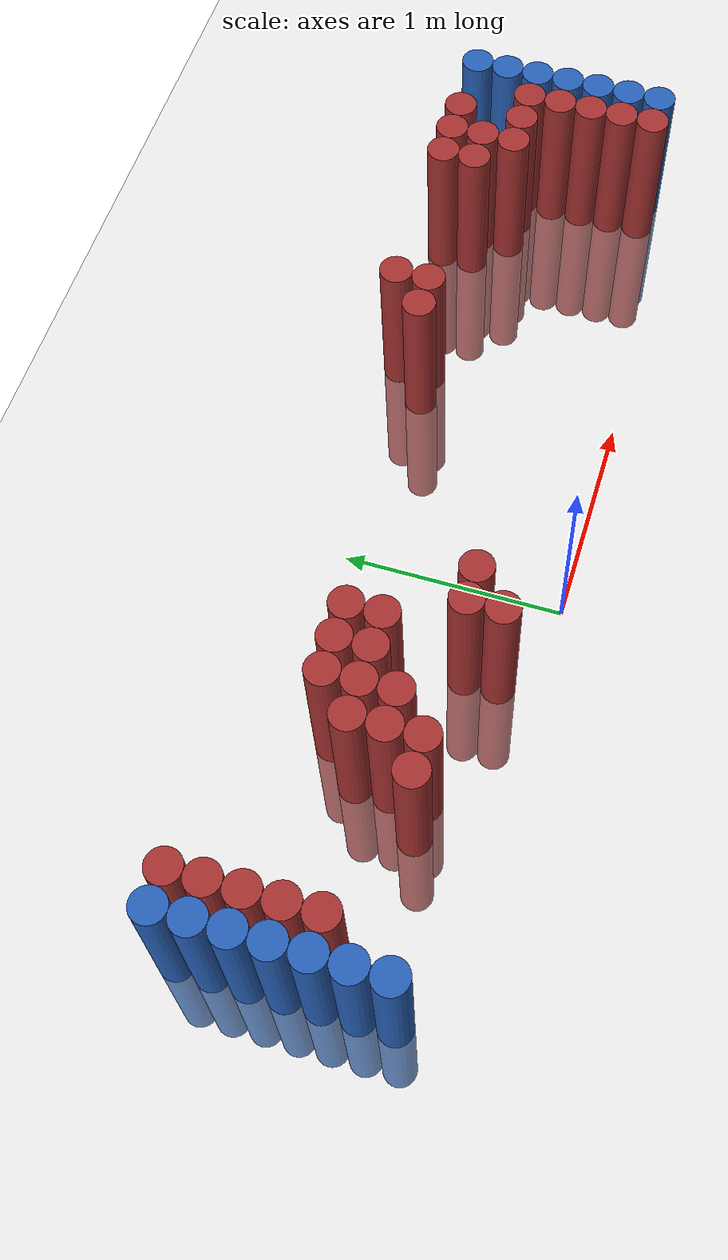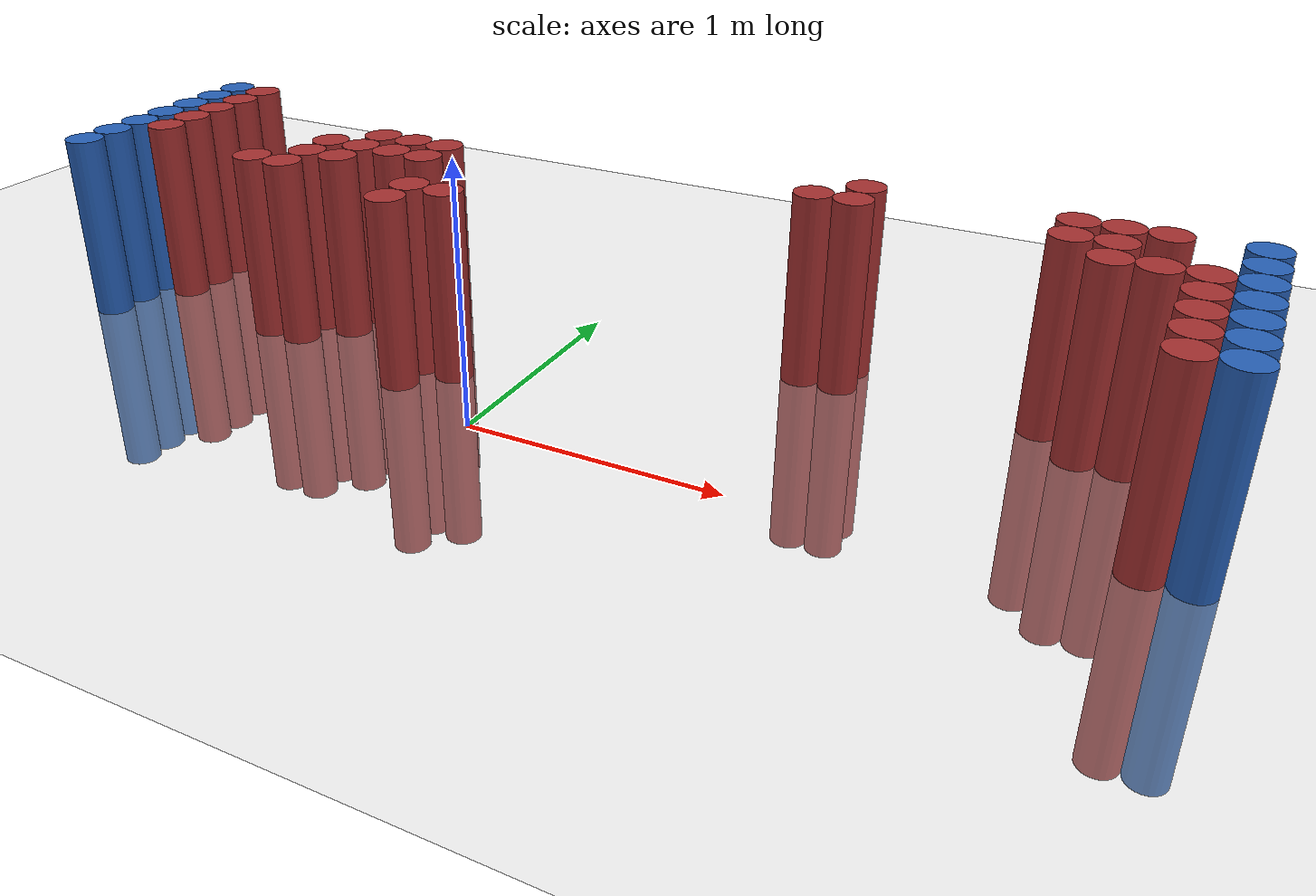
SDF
<sdf version="1.6">
 <world name="default">
  <model name="ground_plane">
   <static>1</static>
   <link name="link">
    <collision name="collision">
     <geometry><plane><normal>0 0 1</normal><size>100 100</size></plane></geometry>
     <surface><friction><ode><mu>100</mu><mu2>50</mu2></ode></friction></surface>
    </collision>
    <visual name="visual">
     <cast_shadows>0</cast_shadows>
     <geometry><plane><normal>0 0 1</normal><size>100 100</size></plane></geometry>
     <material>
      <script><uri>file://media/materials/scripts/gazebo.material</uri><name>Gazebo/Grey</name></script>
     </material>
    </visual>
   </link>
  </model>
  <model name="unit_cylinder_96">
   <static>1</static>
   <pose>-1.925000 0.175000 0.000000 0.000000 0.000000 0.000000</pose>
   <link name="link">
    <inertial>
     <mass>1</mass>
     <inertia><ixx>0.145833</ixx><ixy>0</ixy><ixz>0</ixz><iyy>0.145833</iyy><iyz>0</iyz><izz>0.125</izz></inertia>
    </inertial>
    <collision name="collision">
     <geometry><cylinder><radius>0.075000</radius><length>1.5</length></cylinder></geometry>
    </collision>
    <visual name="visual">
     <geometry><cylinder><radius>0.075000</radius><length>1.5</length></cylinder></geometry>
     <material>
      <ambient>0.152000 0.379000 0.720000 1</ambient>
      <diffuse>0.152000 0.379000 0.720000 1</diffuse>
     </material>
     <material>
      <script><name>Gazebo/Grey</name><uri>file://media/materials/scripts/gazebo.material</uri></script>
     </material>
    </visual>
   </link>
  </model>
  <model name="unit_cylinder_97">
   <static>1</static>
   <pose>-1.925000 0.325000 0.000000 0.000000 0.000000 0.000000</pose>
   <link name="link">
    <inertial>
     <mass>1</mass>
     <inertia><ixx>0.145833</ixx><ixy>0</ixy><ixz>0</ixz><iyy>0.145833</iyy><iyz>0</iyz><izz>0.125</izz></inertia>
    </inertial>
    <collision name="collision">
     <geometry><cylinder><radius>0.075000</radius><length>1.5</length></cylinder></geometry>
    </collision>
    <visual name="visual">
     <geometry><cylinder><radius>0.075000</radius><length>1.5</length></cylinder></geometry>
     <material>
      <ambient>0.152000 0.379000 0.720000 1</ambient>
      <diffuse>0.152000 0.379000 0.720000 1</diffuse>
     </material>
     <material>
      <script><name>Gazebo/Grey</name><uri>file://media/materials/scripts/gazebo.material</uri></script>
     </material>
    </visual>
   </link>
  </model>
  <model name="unit_cylinder_98">
   <static>1</static>
   <pose>-1.925000 0.475000 0.000000 0.000000 0.000000 0.000000</pose>
   <link name="link">
    <inertial>
     <mass>1</mass>
     <inertia><ixx>0.145833</ixx><ixy>0</ixy><ixz>0</ixz><iyy>0.145833</iyy><iyz>0</iyz><izz>0.125</izz></inertia>
    </inertial>
    <collision name="collision">
     <geometry><cylinder><radius>0.075000</radius><length>1.5</length></cylinder></geometry>
    </collision>
    <visual name="visual">
     <geometry><cylinder><radius>0.075000</radius><length>1.5</length></cylinder></geometry>
     <material>
      <ambient>0.152000 0.379000 0.720000 1</ambient>
      <diffuse>0.152000 0.379000 0.720000 1</diffuse>
     </material>
     <material>
      <script><name>Gazebo/Grey</name><uri>file://media/materials/scripts/gazebo.material</uri></script>
     </material>
    </visual>
   </link>
  </model>
  <model name="unit_cylinder_99">
   <static>1</static>
   <pose>-1.925000 0.625000 0.000000 0.000000 0.000000 0.000000</pose>
   <link name="link">
    <inertial>
     <mass>1</mass>
     <inertia><ixx>0.145833</ixx><ixy>0</ixy><ixz>0</ixz><iyy>0.145833</iyy><iyz>0</iyz><izz>0.125</izz></inertia>
    </inertial>
    <collision name="collision">
     <geometry><cylinder><radius>0.075000</radius><length>1.5</length></cylinder></geometry>
    </collision>
    <visual name="visual">
     <geometry><cylinder><radius>0.075000</radius><length>1.5</length></cylinder></geometry>
     <material>
      <ambient>0.152000 0.379000 0.720000 1</ambient>
      <diffuse>0.152000 0.379000 0.720000 1</diffuse>
     </material>
     <material>
      <script><name>Gazebo/Grey</name><uri>file://media/materials/scripts/gazebo.material</uri></script>
     </material>
    </visual>
   </link>
  </model>
  <model name="unit_cylinder_100">
   <static>1</static>
   <pose>-1.925000 0.775000 0.000000 0.000000 0.000000 0.000000</pose>
   <link name="link">
    <inertial>
     <mass>1</mass>
     <inertia><ixx>0.145833</ixx><ixy>0</ixy><ixz>0</ixz><iyy>0.145833</iyy><iyz>0</iyz><izz>0.125</izz></inertia>
    </inertial>
    <collision name="collision">
     <geometry><cylinder><radius>0.075000</radius><length>1.5</length></cylinder></geometry>
    </collision>
    <visual name="visual">
     <geometry><cylinder><radius>0.075000</radius><length>1.5</length></cylinder></geometry>
     <material>
      <ambient>0.152000 0.379000 0.720000 1</ambient>
      <diffuse>0.152000 0.379000 0.720000 1</diffuse>
     </material>
     <material>
      <script><name>Gazebo/Grey</name><uri>file://media/materials/scripts/gazebo.material</uri></script>
     </material>
    </visual>
   </link>
  </model>
  <model name="unit_cylinder_101">
   <static>1</static>
   <pose>-1.925000 0.925000 0.000000 0.000000 0.000000 0.000000</pose>
   <link name="link">
    <inertial>
     <mass>1</mass>
     <inertia><ixx>0.145833</ixx><ixy>0</ixy><ixz>0</ixz><iyy>0.145833</iyy><iyz>0</iyz><izz>0.125</izz></inertia>
    </inertial>
    <collision name="collision">
     <geometry><cylinder><radius>0.075000</radius><length>1.5</length></cylinder></geometry>
    </collision>
    <visual name="visual">
     <geometry><cylinder><radius>0.075000</radius><length>1.5</length></cylinder></geometry>
     <material>
      <ambient>0.152000 0.379000 0.720000 1</ambient>
      <diffuse>0.152000 0.379000 0.720000 1</diffuse>
     </material>
     <material>
      <script><name>Gazebo/Grey</name><uri>file://media/materials/scripts/gazebo.material</uri></script>
     </material>
    </visual>
   </link>
  </model>
  <model name="unit_cylinder_102">
   <static>1</static>
   <pose>-1.925000 1.075000 0.000000 0.000000 0.000000 0.000000</pose>
   <link name="link">
    <inertial>
     <mass>1</mass>
     <inertia><ixx>0.145833</ixx><ixy>0</ixy><ixz>0</ixz><iyy>0.145833</iyy><iyz>0</iyz><izz>0.125</izz></inertia>
    </inertial>
    <collision name="collision">
     <geometry><cylinder><radius>0.075000</radius><length>1.5</length></cylinder></geometry>
    </collision>
    <visual name="visual">
     <geometry><cylinder><radius>0.075000</radius><length>1.5</length></cylinder></geometry>
     <material>
      <ambient>0.152000 0.379000 0.720000 1</ambient>
      <diffuse>0.152000 0.379000 0.720000 1</diffuse>
     </material>
     <material>
      <script><name>Gazebo/Grey</name><uri>file://media/materials/scripts/gazebo.material</uri></script>
     </material>
    </visual>
   </link>
  </model>
  <model name="unit_cylinder_126">
   <static>1</static>
   <pose>-1.775000 0.475000 0.000000 0.000000 0.000000 0.000000</pose>
   <link name="link">
    <inertial>
     <mass>1</mass>
     <inertia><ixx>0.145833</ixx><ixy>0</ixy><ixz>0</ixz><iyy>0.145833</iyy><iyz>0</iyz><izz>0.125</izz></inertia>
    </inertial>
    <collision name="collision">
     <geometry><cylinder><radius>0.075000</radius><length>1.5</length></cylinder></geometry>
    </collision>
    <visual name="visual">
     <geometry><cylinder><radius>0.075000</radius><length>1.5</length></cylinder></geometry>
     <material>
      <ambient>0.648000 0.192000 0.192000 1</ambient>
      <diffuse>0.648000 0.192000 0.192000 1</diffuse>
     </material>
     <material>
      <script><name>Gazebo/Grey</name><uri>file://media/materials/scripts/gazebo.material</uri></script>
     </material>
    </visual>
   </link>
  </model>
  <model name="unit_cylinder_127">
   <static>1</static>
   <pose>-1.775000 0.625000 0.000000 0.000000 0.000000 0.000000</pose>
   <link name="link">
    <inertial>
     <mass>1</mass>
     <inertia><ixx>0.145833</ixx><ixy>0</ixy><ixz>0</ixz><iyy>0.145833</iyy><iyz>0</iyz><izz>0.125</izz></inertia>
    </inertial>
    <collision name="collision">
     <geometry><cylinder><radius>0.075000</radius><length>1.5</length></cylinder></geometry>
    </collision>
    <visual name="visual">
     <geometry><cylinder><radius>0.075000</radius><length>1.5</length></cylinder></geometry>
     <material>
      <ambient>0.648000 0.192000 0.192000 1</ambient>
      <diffuse>0.648000 0.192000 0.192000 1</diffuse>
     </material>
     <material>
      <script><name>Gazebo/Grey</name><uri>file://media/materials/scripts/gazebo.material</uri></script>
     </material>
    </visual>
   </link>
  </model>
  <model name="unit_cylinder_128">
   <static>1</static>
   <pose>-1.775000 0.775000 0.000000 0.000000 0.000000 0.000000</pose>
   <link name="link">
    <inertial>
     <mass>1</mass>
     <inertia><ixx>0.145833</ixx><ixy>0</ixy><ixz>0</ixz><iyy>0.145833</iyy><iyz>0</iyz><izz>0.125</izz></inertia>
    </inertial>
    <collision name="collision">
     <geometry><cylinder><radius>0.075000</radius><length>1.5</length></cylinder></geometry>
    </collision>
    <visual name="visual">
     <geometry><cylinder><radius>0.075000</radius><length>1.5</length></cylinder></geometry>
     <material>
      <ambient>0.648000 0.192000 0.192000 1</ambient>
      <diffuse>0.648000 0.192000 0.192000 1</diffuse>
     </material>
     <material>
      <script><name>Gazebo/Grey</name><uri>file://media/materials/scripts/gazebo.material</uri></script>
     </material>
    </visual>
   </link>
  </model>
  <model name="unit_cylinder_129">
   <static>1</static>
   <pose>-1.775000 0.925000 0.000000 0.000000 0.000000 0.000000</pose>
   <link name="link">
    <inertial>
     <mass>1</mass>
     <inertia><ixx>0.145833</ixx><ixy>0</ixy><ixz>0</ixz><iyy>0.145833</iyy><iyz>0</iyz><izz>0.125</izz></inertia>
    </inertial>
    <collision name="collision">
     <geometry><cylinder><radius>0.075000</radius><length>1.5</length></cylinder></geometry>
    </collision>
    <visual name="visual">
     <geometry><cylinder><radius>0.075000</radius><length>1.5</length></cylinder></geometry>
     <material>
      <ambient>0.648000 0.192000 0.192000 1</ambient>
      <diffuse>0.648000 0.192000 0.192000 1</diffuse>
     </material>
     <material>
      <script><name>Gazebo/Grey</name><uri>file://media/materials/scripts/gazebo.material</uri></script>
     </material>
    </visual>
   </link>
  </model>
  <model name="unit_cylinder_130">
   <static>1</static>
   <pose>-1.775000 1.075000 0.000000 0.000000 0.000000 0.000000</pose>
   <link name="link">
    <inertial>
     <mass>1</mass>
     <inertia><ixx>0.145833</ixx><ixy>0</ixy><ixz>0</ixz><iyy>0.145833</iyy><iyz>0</iyz><izz>0.125</izz></inertia>
    </inertial>
    <collision name="collision">
     <geometry><cylinder><radius>0.075000</radius><length>1.5</length></cylinder></geometry>
    </collision>
    <visual name="visual">
     <geometry><cylinder><radius>0.075000</radius><length>1.5</length></cylinder></geometry>
     <material>
      <ambient>0.648000 0.192000 0.192000 1</ambient>
      <diffuse>0.648000 0.192000 0.192000 1</diffuse>
     </material>
     <material>
      <script><name>Gazebo/Grey</name><uri>file://media/materials/scripts/gazebo.material</uri></script>
     </material>
    </visual>
   </link>
  </model>
  <model name="unit_cylinder_158">
   <static>1</static>
   <pose>-1.175000 0.325000 0.000000 0.000000 0.000000 0.000000</pose>
   <link name="link">
    <inertial>
     <mass>1</mass>
     <inertia><ixx>0.145833</ixx><ixy>0</ixy><ixz>0</ixz><iyy>0.145833</iyy><iyz>0</iyz><izz>0.125</izz></inertia>
    </inertial>
    <collision name="collision">
     <geometry><cylinder><radius>0.075000</radius><length>1.5</length></cylinder></geometry>
    </collision>
    <visual name="visual">
     <geometry><cylinder><radius>0.075000</radius><length>1.5</length></cylinder></geometry>
     <material>
      <ambient>0.648000 0.192000 0.192000 1</ambient>
      <diffuse>0.648000 0.192000 0.192000 1</diffuse>
     </material>
     <material>
      <script><name>Gazebo/Grey</name><uri>file://media/materials/scripts/gazebo.material</uri></script>
     </material>
    </visual>
   </link>
  </model>
  <model name="unit_cylinder_160">
   <static>1</static>
   <pose>-1.025000 0.325000 0.000000 0.000000 0.000000 0.000000</pose>
   <link name="link">
    <inertial>
     <mass>1</mass>
     <inertia><ixx>0.145833</ixx><ixy>0</ixy><ixz>0</ixz><iyy>0.145833</iyy><iyz>0</iyz><izz>0.125</izz></inertia>
    </inertial>
    <collision name="collision">
     <geometry><cylinder><radius>0.075000</radius><length>1.5</length></cylinder></geometry>
    </collision>
    <visual name="visual">
     <geometry><cylinder><radius>0.075000</radius><length>1.5</length></cylinder></geometry>
     <material>
      <ambient>0.648000 0.192000 0.192000 1</ambient>
      <diffuse>0.648000 0.192000 0.192000 1</diffuse>
     </material>
     <material>
      <script><name>Gazebo/Grey</name><uri>file://media/materials/scripts/gazebo.material</uri></script>
     </material>
    </visual>
   </link>
  </model>
  <model name="unit_cylinder_161">
   <static>1</static>
   <pose>-1.025000 0.475000 0.000000 0.000000 0.000000 0.000000</pose>
   <link name="link">
    <inertial>
     <mass>1</mass>
     <inertia><ixx>0.145833</ixx><ixy>0</ixy><ixz>0</ixz><iyy>0.145833</iyy><iyz>0</iyz><izz>0.125</izz></inertia>
    </inertial>
    <collision name="collision">
     <geometry><cylinder><radius>0.075000</radius><length>1.5</length></cylinder></geometry>
    </collision>
    <visual name="visual">
     <geometry><cylinder><radius>0.075000</radius><length>1.5</length></cylinder></geometry>
     <material>
      <ambient>0.648000 0.192000 0.192000 1</ambient>
      <diffuse>0.648000 0.192000 0.192000 1</diffuse>
     </material>
     <material>
      <script><name>Gazebo/Grey</name><uri>file://media/materials/scripts/gazebo.material</uri></script>
     </material>
    </visual>
   </link>
  </model>
  <model name="unit_cylinder_162">
   <static>1</static>
   <pose>-1.025000 0.625000 0.000000 0.000000 0.000000 0.000000</pose>
   <link name="link">
    <inertial>
     <mass>1</mass>
     <inertia><ixx>0.145833</ixx><ixy>0</ixy><ixz>0</ixz><iyy>0.145833</iyy><iyz>0</iyz><izz>0.125</izz></inertia>
    </inertial>
    <collision name="collision">
     <geometry><cylinder><radius>0.075000</radius><length>1.5</length></cylinder></geometry>
    </collision>
    <visual name="visual">
     <geometry><cylinder><radius>0.075000</radius><length>1.5</length></cylinder></geometry>
     <material>
      <ambient>0.648000 0.192000 0.192000 1</ambient>
      <diffuse>0.648000 0.192000 0.192000 1</diffuse>
     </material>
     <material>
      <script><name>Gazebo/Grey</name><uri>file://media/materials/scripts/gazebo.material</uri></script>
     </material>
    </visual>
   </link>
  </model>
  <model name="unit_cylinder_163">
   <static>1</static>
   <pose>-0.875000 0.475000 0.000000 0.000000 0.000000 0.000000</pose>
   <link name="link">
    <inertial>
     <mass>1</mass>
     <inertia><ixx>0.145833</ixx><ixy>0</ixy><ixz>0</ixz><iyy>0.145833</iyy><iyz>0</iyz><izz>0.125</izz></inertia>
    </inertial>
    <collision name="collision">
     <geometry><cylinder><radius>0.075000</radius><length>1.5</length></cylinder></geometry>
    </collision>
    <visual name="visual">
     <geometry><cylinder><radius>0.075000</radius><length>1.5</length></cylinder></geometry>
     <material>
      <ambient>0.648000 0.192000 0.192000 1</ambient>
      <diffuse>0.648000 0.192000 0.192000 1</diffuse>
     </material>
     <material>
      <script><name>Gazebo/Grey</name><uri>file://media/materials/scripts/gazebo.material</uri></script>
     </material>
    </visual>
   </link>
  </model>
  <model name="unit_cylinder_164">
   <static>1</static>
   <pose>-0.875000 0.625000 0.000000 0.000000 0.000000 0.000000</pose>
   <link name="link">
    <inertial>
     <mass>1</mass>
     <inertia><ixx>0.145833</ixx><ixy>0</ixy><ixz>0</ixz><iyy>0.145833</iyy><iyz>0</iyz><izz>0.125</izz></inertia>
    </inertial>
    <collision name="collision">
     <geometry><cylinder><radius>0.075000</radius><length>1.5</length></cylinder></geometry>
    </collision>
    <visual name="visual">
     <geometry><cylinder><radius>0.075000</radius><length>1.5</length></cylinder></geometry>
     <material>
      <ambient>0.648000 0.192000 0.192000 1</ambient>
      <diffuse>0.648000 0.192000 0.192000 1</diffuse>
     </material>
     <material>
      <script><name>Gazebo/Grey</name><uri>file://media/materials/scripts/gazebo.material</uri></script>
     </material>
    </visual>
   </link>
  </model>
  <model name="unit_cylinder_165">
   <static>1</static>
   <pose>-0.875000 0.775000 0.000000 0.000000 0.000000 0.000000</pose>
   <link name="link">
    <inertial>
     <mass>1</mass>
     <inertia><ixx>0.145833</ixx><ixy>0</ixy><ixz>0</ixz><iyy>0.145833</iyy><iyz>0</iyz><izz>0.125</izz></inertia>
    </inertial>
    <collision name="collision">
     <geometry><cylinder><radius>0.075000</radius><length>1.5</length></cylinder></geometry>
    </collision>
    <visual name="visual">
     <geometry><cylinder><radius>0.075000</radius><length>1.5</length></cylinder></geometry>
     <material>
      <ambient>0.648000 0.192000 0.192000 1</ambient>
      <diffuse>0.648000 0.192000 0.192000 1</diffuse>
     </material>
     <material>
      <script><name>Gazebo/Grey</name><uri>file://media/materials/scripts/gazebo.material</uri></script>
     </material>
    </visual>
   </link>
  </model>
  <model name="unit_cylinder_168">
   <static>1</static>
   <pose>-0.725000 0.625000 0.000000 0.000000 0.000000 0.000000</pose>
   <link name="link">
    <inertial>
     <mass>1</mass>
     <inertia><ixx>0.145833</ixx><ixy>0</ixy><ixz>0</ixz><iyy>0.145833</iyy><iyz>0</iyz><izz>0.125</izz></inertia>
    </inertial>
    <collision name="collision">
     <geometry><cylinder><radius>0.075000</radius><length>1.5</length></cylinder></geometry>
    </collision>
    <visual name="visual">
     <geometry><cylinder><radius>0.075000</radius><length>1.5</length></cylinder></geometry>
     <material>
      <ambient>0.648000 0.192000 0.192000 1</ambient>
      <diffuse>0.648000 0.192000 0.192000 1</diffuse>
     </material>
     <material>
      <script><name>Gazebo/Grey</name><uri>file://media/materials/scripts/gazebo.material</uri></script>
     </material>
    </visual>
   </link>
  </model>
  <model name="unit_cylinder_169">
   <static>1</static>
   <pose>-0.725000 0.775000 0.000000 0.000000 0.000000 0.000000</pose>
   <link name="link">
    <inertial>
     <mass>1</mass>
     <inertia><ixx>0.145833</ixx><ixy>0</ixy><ixz>0</ixz><iyy>0.145833</iyy><iyz>0</iyz><izz>0.125</izz></inertia>
    </inertial>
    <collision name="collision">
     <geometry><cylinder><radius>0.075000</radius><length>1.5</length></cylinder></geometry>
    </collision>
    <visual name="visual">
     <geometry><cylinder><radius>0.075000</radius><length>1.5</length></cylinder></geometry>
     <material>
      <ambient>0.648000 0.192000 0.192000 1</ambient>
      <diffuse>0.648000 0.192000 0.192000 1</diffuse>
     </material>
     <material>
      <script><name>Gazebo/Grey</name><uri>file://media/materials/scripts/gazebo.material</uri></script>
     </material>
    </visual>
   </link>
  </model>
  <model name="unit_cylinder_174">
   <static>1</static>
   <pose>-0.575000 0.625000 0.000000 0.000000 0.000000 0.000000</pose>
   <link name="link">
    <inertial>
     <mass>1</mass>
     <inertia><ixx>0.145833</ixx><ixy>0</ixy><ixz>0</ixz><iyy>0.145833</iyy><iyz>0</iyz><izz>0.125</izz></inertia>
    </inertial>
    <collision name="collision">
     <geometry><cylinder><radius>0.075000</radius><length>1.5</length></cylinder></geometry>
    </collision>
    <visual name="visual">
     <geometry><cylinder><radius>0.075000</radius><length>1.5</length></cylinder></geometry>
     <material>
      <ambient>0.648000 0.192000 0.192000 1</ambient>
      <diffuse>0.648000 0.192000 0.192000 1</diffuse>
     </material>
     <material>
      <script><name>Gazebo/Grey</name><uri>file://media/materials/scripts/gazebo.material</uri></script>
     </material>
    </visual>
   </link>
  </model>
  <model name="unit_cylinder_175">
   <static>1</static>
   <pose>-0.575000 0.775000 0.000000 0.000000 0.000000 0.000000</pose>
   <link name="link">
    <inertial>
     <mass>1</mass>
     <inertia><ixx>0.145833</ixx><ixy>0</ixy><ixz>0</ixz><iyy>0.145833</iyy><iyz>0</iyz><izz>0.125</izz></inertia>
    </inertial>
    <collision name="collision">
     <geometry><cylinder><radius>0.075000</radius><length>1.5</length></cylinder></geometry>
    </collision>
    <visual name="visual">
     <geometry><cylinder><radius>0.075000</radius><length>1.5</length></cylinder></geometry>
     <material>
      <ambient>0.648000 0.192000 0.192000 1</ambient>
      <diffuse>0.648000 0.192000 0.192000 1</diffuse>
     </material>
     <material>
      <script><name>Gazebo/Grey</name><uri>file://media/materials/scripts/gazebo.material</uri></script>
     </material>
    </visual>
   </link>
  </model>
  <model name="unit_cylinder_180">
   <static>1</static>
   <pose>-0.425000 0.175000 0.000000 0.000000 0.000000 0.000000</pose>
   <link name="link">
    <inertial>
     <mass>1</mass>
     <inertia><ixx>0.145833</ixx><ixy>0</ixy><ixz>0</ixz><iyy>0.145833</iyy><iyz>0</iyz><izz>0.125</izz></inertia>
    </inertial>
    <collision name="collision">
     <geometry><cylinder><radius>0.075000</radius><length>1.5</length></cylinder></geometry>
    </collision>
    <visual name="visual">
     <geometry><cylinder><radius>0.075000</radius><length>1.5</length></cylinder></geometry>
     <material>
      <ambient>0.648000 0.192000 0.192000 1</ambient>
      <diffuse>0.648000 0.192000 0.192000 1</diffuse>
     </material>
     <material>
      <script><name>Gazebo/Grey</name><uri>file://media/materials/scripts/gazebo.material</uri></script>
     </material>
    </visual>
   </link>
  </model>
  <model name="unit_cylinder_181">
   <static>1</static>
   <pose>-0.425000 0.325000 0.000000 0.000000 0.000000 0.000000</pose>
   <link name="link">
    <inertial>
     <mass>1</mass>
     <inertia><ixx>0.145833</ixx><ixy>0</ixy><ixz>0</ixz><iyy>0.145833</iyy><iyz>0</iyz><izz>0.125</izz></inertia>
    </inertial>
    <collision name="collision">
     <geometry><cylinder><radius>0.075000</radius><length>1.5</length></cylinder></geometry>
    </collision>
    <visual name="visual">
     <geometry><cylinder><radius>0.075000</radius><length>1.5</length></cylinder></geometry>
     <material>
      <ambient>0.648000 0.192000 0.192000 1</ambient>
      <diffuse>0.648000 0.192000 0.192000 1</diffuse>
     </material>
     <material>
      <script><name>Gazebo/Grey</name><uri>file://media/materials/scripts/gazebo.material</uri></script>
     </material>
    </visual>
   </link>
  </model>
  <model name="unit_cylinder_184">
   <static>1</static>
   <pose>-0.275000 0.325000 0.000000 0.000000 0.000000 0.000000</pose>
   <link name="link">
    <inertial>
     <mass>1</mass>
     <inertia><ixx>0.145833</ixx><ixy>0</ixy><ixz>0</ixz><iyy>0.145833</iyy><iyz>0</iyz><izz>0.125</izz></inertia>
    </inertial>
    <collision name="collision">
     <geometry><cylinder><radius>0.075000</radius><length>1.5</length></cylinder></geometry>
    </collision>
    <visual name="visual">
     <geometry><cylinder><radius>0.075000</radius><length>1.5</length></cylinder></geometry>
     <material>
      <ambient>0.648000 0.192000 0.192000 1</ambient>
      <diffuse>0.648000 0.192000 0.192000 1</diffuse>
     </material>
     <material>
      <script><name>Gazebo/Grey</name><uri>file://media/materials/scripts/gazebo.material</uri></script>
     </material>
    </visual>
   </link>
  </model>
  <model name="unit_cylinder_194">
   <static>1</static>
   <pose>0.925000 0.925000 0.000000 0.000000 0.000000 0.000000</pose>
   <link name="link">
    <inertial>
     <mass>1</mass>
     <inertia><ixx>0.145833</ixx><ixy>0</ixy><ixz>0</ixz><iyy>0.145833</iyy><iyz>0</iyz><izz>0.125</izz></inertia>
    </inertial>
    <collision name="collision">
     <geometry><cylinder><radius>0.075000</radius><length>1.5</length></cylinder></geometry>
    </collision>
    <visual name="visual">
     <geometry><cylinder><radius>0.075000</radius><length>1.5</length></cylinder></geometry>
     <material>
      <ambient>0.648000 0.192000 0.192000 1</ambient>
      <diffuse>0.648000 0.192000 0.192000 1</diffuse>
     </material>
     <material>
      <script><name>Gazebo/Grey</name><uri>file://media/materials/scripts/gazebo.material</uri></script>
     </material>
    </visual>
   </link>
  </model>
  <model name="unit_cylinder_196">
   <static>1</static>
   <pose>1.075000 0.925000 0.000000 0.000000 0.000000 0.000000</pose>
   <link name="link">
    <inertial>
     <mass>1</mass>
     <inertia><ixx>0.145833</ixx><ixy>0</ixy><ixz>0</ixz><iyy>0.145833</iyy><iyz>0</iyz><izz>0.125</izz></inertia>
    </inertial>
    <collision name="collision">
     <geometry><cylinder><radius>0.075000</radius><length>1.5</length></cylinder></geometry>
    </collision>
    <visual name="visual">
     <geometry><cylinder><radius>0.075000</radius><length>1.5</length></cylinder></geometry>
     <material>
      <ambient>0.648000 0.192000 0.192000 1</ambient>
      <diffuse>0.648000 0.192000 0.192000 1</diffuse>
     </material>
     <material>
      <script><name>Gazebo/Grey</name><uri>file://media/materials/scripts/gazebo.material</uri></script>
     </material>
    </visual>
   </link>
  </model>
  <model name="unit_cylinder_197">
   <static>1</static>
   <pose>1.075000 1.075000 0.000000 0.000000 0.000000 0.000000</pose>
   <link name="link">
    <inertial>
     <mass>1</mass>
     <inertia><ixx>0.145833</ixx><ixy>0</ixy><ixz>0</ixz><iyy>0.145833</iyy><iyz>0</iyz><izz>0.125</izz></inertia>
    </inertial>
    <collision name="collision">
     <geometry><cylinder><radius>0.075000</radius><length>1.5</length></cylinder></geometry>
    </collision>
    <visual name="visual">
     <geometry><cylinder><radius>0.075000</radius><length>1.5</length></cylinder></geometry>
     <material>
      <ambient>0.648000 0.192000 0.192000 1</ambient>
      <diffuse>0.648000 0.192000 0.192000 1</diffuse>
     </material>
     <material>
      <script><name>Gazebo/Grey</name><uri>file://media/materials/scripts/gazebo.material</uri></script>
     </material>
    </visual>
   </link>
  </model>
  <model name="unit_cylinder_220">
   <static>1</static>
   <pose>1.825000 0.925000 0.000000 0.000000 0.000000 0.000000</pose>
   <link name="link">
    <inertial>
     <mass>1</mass>
     <inertia><ixx>0.145833</ixx><ixy>0</ixy><ixz>0</ixz><iyy>0.145833</iyy><iyz>0</iyz><izz>0.125</izz></inertia>
    </inertial>
    <collision name="collision">
     <geometry><cylinder><radius>0.075000</radius><length>1.5</length></cylinder></geometry>
    </collision>
    <visual name="visual">
     <geometry><cylinder><radius>0.075000</radius><length>1.5</length></cylinder></geometry>
     <material>
      <ambient>0.648000 0.192000 0.192000 1</ambient>
      <diffuse>0.648000 0.192000 0.192000 1</diffuse>
     </material>
     <material>
      <script><name>Gazebo/Grey</name><uri>file://media/materials/scripts/gazebo.material</uri></script>
     </material>
    </visual>
   </link>
  </model>
  <model name="unit_cylinder_221">
   <static>1</static>
   <pose>1.825000 1.075000 0.000000 0.000000 0.000000 0.000000</pose>
   <link name="link">
    <inertial>
     <mass>1</mass>
     <inertia><ixx>0.145833</ixx><ixy>0</ixy><ixz>0</ixz><iyy>0.145833</iyy><iyz>0</iyz><izz>0.125</izz></inertia>
    </inertial>
    <collision name="collision">
     <geometry><cylinder><radius>0.075000</radius><length>1.5</length></cylinder></geometry>
    </collision>
    <visual name="visual">
     <geometry><cylinder><radius>0.075000</radius><length>1.5</length></cylinder></geometry>
     <material>
      <ambient>0.648000 0.192000 0.192000 1</ambient>
      <diffuse>0.648000 0.192000 0.192000 1</diffuse>
     </material>
     <material>
      <script><name>Gazebo/Grey</name><uri>file://media/materials/scripts/gazebo.material</uri></script>
     </material>
    </visual>
   </link>
  </model>
  <model name="unit_cylinder_228">
   <static>1</static>
   <pose>1.975000 0.775000 0.000000 0.000000 0.000000 0.000000</pose>
   <link name="link">
    <inertial>
     <mass>1</mass>
     <inertia><ixx>0.145833</ixx><ixy>0</ixy><ixz>0</ixz><iyy>0.145833</iyy><iyz>0</iyz><izz>0.125</izz></inertia>
    </inertial>
    <collision name="collision">
     <geometry><cylinder><radius>0.075000</radius><length>1.5</length></cylinder></geometry>
    </collision>
    <visual name="visual">
     <geometry><cylinder><radius>0.075000</radius><length>1.5</length></cylinder></geometry>
     <material>
      <ambient>0.648000 0.192000 0.192000 1</ambient>
      <diffuse>0.648000 0.192000 0.192000 1</diffuse>
     </material>
     <material>
      <script><name>Gazebo/Grey</name><uri>file://media/materials/scripts/gazebo.material</uri></script>
     </material>
    </visual>
   </link>
  </model>
  <model name="unit_cylinder_229">
   <static>1</static>
   <pose>1.975000 0.925000 0.000000 0.000000 0.000000 0.000000</pose>
   <link name="link">
    <inertial>
     <mass>1</mass>
     <inertia><ixx>0.145833</ixx><ixy>0</ixy><ixz>0</ixz><iyy>0.145833</iyy><iyz>0</iyz><izz>0.125</izz></inertia>
    </inertial>
    <collision name="collision">
     <geometry><cylinder><radius>0.075000</radius><length>1.5</length></cylinder></geometry>
    </collision>
    <visual name="visual">
     <geometry><cylinder><radius>0.075000</radius><length>1.5</length></cylinder></geometry>
     <material>
      <ambient>0.648000 0.192000 0.192000 1</ambient>
      <diffuse>0.648000 0.192000 0.192000 1</diffuse>
     </material>
     <material>
      <script><name>Gazebo/Grey</name><uri>file://media/materials/scripts/gazebo.material</uri></script>
     </material>
    </visual>
   </link>
  </model>
  <model name="unit_cylinder_230">
   <static>1</static>
   <pose>1.975000 1.075000 0.000000 0.000000 0.000000 0.000000</pose>
   <link name="link">
    <inertial>
     <mass>1</mass>
     <inertia><ixx>0.145833</ixx><ixy>0</ixy><ixz>0</ixz><iyy>0.145833</iyy><iyz>0</iyz><izz>0.125</izz></inertia>
    </inertial>
    <collision name="collision">
     <geometry><cylinder><radius>0.075000</radius><length>1.5</length></cylinder></geometry>
    </collision>
    <visual name="visual">
     <geometry><cylinder><radius>0.075000</radius><length>1.5</length></cylinder></geometry>
     <material>
      <ambient>0.648000 0.192000 0.192000 1</ambient>
      <diffuse>0.648000 0.192000 0.192000 1</diffuse>
     </material>
     <material>
      <script><name>Gazebo/Grey</name><uri>file://media/materials/scripts/gazebo.material</uri></script>
     </material>
    </visual>
   </link>
  </model>
  <model name="unit_cylinder_236">
   <static>1</static>
   <pose>2.125000 0.775000 0.000000 0.000000 0.000000 0.000000</pose>
   <link name="link">
    <inertial>
     <mass>1</mass>
     <inertia><ixx>0.145833</ixx><ixy>0</ixy><ixz>0</ixz><iyy>0.145833</iyy><iyz>0</iyz><izz>0.125</izz></inertia>
    </inertial>
    <collision name="collision">
     <geometry><cylinder><radius>0.075000</radius><length>1.5</length></cylinder></geometry>
    </collision>
    <visual name="visual">
     <geometry><cylinder><radius>0.075000</radius><length>1.5</length></cylinder></geometry>
     <material>
      <ambient>0.648000 0.192000 0.192000 1</ambient>
      <diffuse>0.648000 0.192000 0.192000 1</diffuse>
     </material>
     <material>
      <script><name>Gazebo/Grey</name><uri>file://media/materials/scripts/gazebo.material</uri></script>
     </material>
    </visual>
   </link>
  </model>
  <model name="unit_cylinder_237">
   <static>1</static>
   <pose>2.125000 1.075000 0.000000 0.000000 0.000000 0.000000</pose>
   <link name="link">
    <inertial>
     <mass>1</mass>
     <inertia><ixx>0.145833</ixx><ixy>0</ixy><ixz>0</ixz><iyy>0.145833</iyy><iyz>0</iyz><izz>0.125</izz></inertia>
    </inertial>
    <collision name="collision">
     <geometry><cylinder><radius>0.075000</radius><length>1.5</length></cylinder></geometry>
    </collision>
    <visual name="visual">
     <geometry><cylinder><radius>0.075000</radius><length>1.5</length></cylinder></geometry>
     <material>
      <ambient>0.648000 0.192000 0.192000 1</ambient>
      <diffuse>0.648000 0.192000 0.192000 1</diffuse>
     </material>
     <material>
      <script><name>Gazebo/Grey</name><uri>file://media/materials/scripts/gazebo.material</uri></script>
     </material>
    </visual>
   </link>
  </model>
  <model name="unit_cylinder_243">
   <static>1</static>
   <pose>2.275000 0.175000 0.000000 0.000000 0.000000 0.000000</pose>
   <link name="link">
    <inertial>
     <mass>1</mass>
     <inertia><ixx>0.145833</ixx><ixy>0</ixy><ixz>0</ixz><iyy>0.145833</iyy><iyz>0</iyz><izz>0.125</izz></inertia>
    </inertial>
    <collision name="collision">
     <geometry><cylinder><radius>0.075000</radius><length>1.5</length></cylinder></geometry>
    </collision>
    <visual name="visual">
     <geometry><cylinder><radius>0.075000</radius><length>1.5</length></cylinder></geometry>
     <material>
      <ambient>0.648000 0.192000 0.192000 1</ambient>
      <diffuse>0.648000 0.192000 0.192000 1</diffuse>
     </material>
     <material>
      <script><name>Gazebo/Grey</name><uri>file://media/materials/scripts/gazebo.material</uri></script>
     </material>
    </visual>
   </link>
  </model>
  <model name="unit_cylinder_244">
   <static>1</static>
   <pose>2.275000 0.325000 0.000000 0.000000 0.000000 0.000000</pose>
   <link name="link">
    <inertial>
     <mass>1</mass>
     <inertia><ixx>0.145833</ixx><ixy>0</ixy><ixz>0</ixz><iyy>0.145833</iyy><iyz>0</iyz><izz>0.125</izz></inertia>
    </inertial>
    <collision name="collision">
     <geometry><cylinder><radius>0.075000</radius><length>1.5</length></cylinder></geometry>
    </collision>
    <visual name="visual">
     <geometry><cylinder><radius>0.075000</radius><length>1.5</length></cylinder></geometry>
     <material>
      <ambient>0.648000 0.192000 0.192000 1</ambient>
      <diffuse>0.648000 0.192000 0.192000 1</diffuse>
     </material>
     <material>
      <script><name>Gazebo/Grey</name><uri>file://media/materials/scripts/gazebo.material</uri></script>
     </material>
    </visual>
   </link>
  </model>
  <model name="unit_cylinder_245">
   <static>1</static>
   <pose>2.275000 0.475000 0.000000 0.000000 0.000000 0.000000</pose>
   <link name="link">
    <inertial>
     <mass>1</mass>
     <inertia><ixx>0.145833</ixx><ixy>0</ixy><ixz>0</ixz><iyy>0.145833</iyy><iyz>0</iyz><izz>0.125</izz></inertia>
    </inertial>
    <collision name="collision">
     <geometry><cylinder><radius>0.075000</radius><length>1.5</length></cylinder></geometry>
    </collision>
    <visual name="visual">
     <geometry><cylinder><radius>0.075000</radius><length>1.5</length></cylinder></geometry>
     <material>
      <ambient>0.648000 0.192000 0.192000 1</ambient>
      <diffuse>0.648000 0.192000 0.192000 1</diffuse>
     </material>
     <material>
      <script><name>Gazebo/Grey</name><uri>file://media/materials/scripts/gazebo.material</uri></script>
     </material>
    </visual>
   </link>
  </model>
  <model name="unit_cylinder_246">
   <static>1</static>
   <pose>2.275000 0.625000 0.000000 0.000000 0.000000 0.000000</pose>
   <link name="link">
    <inertial>
     <mass>1</mass>
     <inertia><ixx>0.145833</ixx><ixy>0</ixy><ixz>0</ixz><iyy>0.145833</iyy><iyz>0</iyz><izz>0.125</izz></inertia>
    </inertial>
    <collision name="collision">
     <geometry><cylinder><radius>0.075000</radius><length>1.5</length></cylinder></geometry>
    </collision>
    <visual name="visual">
     <geometry><cylinder><radius>0.075000</radius><length>1.5</length></cylinder></geometry>
     <material>
      <ambient>0.648000 0.192000 0.192000 1</ambient>
      <diffuse>0.648000 0.192000 0.192000 1</diffuse>
     </material>
     <material>
      <script><name>Gazebo/Grey</name><uri>file://media/materials/scripts/gazebo.material</uri></script>
     </material>
    </visual>
   </link>
  </model>
  <model name="unit_cylinder_247">
   <static>1</static>
   <pose>2.275000 0.775000 0.000000 0.000000 0.000000 0.000000</pose>
   <link name="link">
    <inertial>
     <mass>1</mass>
     <inertia><ixx>0.145833</ixx><ixy>0</ixy><ixz>0</ixz><iyy>0.145833</iyy><iyz>0</iyz><izz>0.125</izz></inertia>
    </inertial>
    <collision name="collision">
     <geometry><cylinder><radius>0.075000</radius><length>1.5</length></cylinder></geometry>
    </collision>
    <visual name="visual">
     <geometry><cylinder><radius>0.075000</radius><length>1.5</length></cylinder></geometry>
     <material>
      <ambient>0.648000 0.192000 0.192000 1</ambient>
      <diffuse>0.648000 0.192000 0.192000 1</diffuse>
     </material>
     <material>
      <script><name>Gazebo/Grey</name><uri>file://media/materials/scripts/gazebo.material</uri></script>
     </material>
    </visual>
   </link>
  </model>
  <model name="unit_cylinder_258">
   <static>1</static>
   <pose>2.425000 0.175000 0.000000 0.000000 0.000000 0.000000</pose>
   <link name="link">
    <inertial>
     <mass>1</mass>
     <inertia><ixx>0.145833</ixx><ixy>0</ixy><ixz>0</ixz><iyy>0.145833</iyy><iyz>0</iyz><izz>0.125</izz></inertia>
    </inertial>
    <collision name="collision">
     <geometry><cylinder><radius>0.075000</radius><length>1.5</length></cylinder></geometry>
    </collision>
    <visual name="visual">
     <geometry><cylinder><radius>0.075000</radius><length>1.5</length></cylinder></geometry>
     <material>
      <ambient>0.152000 0.379000 0.720000 1</ambient>
      <diffuse>0.152000 0.379000 0.720000 1</diffuse>
     </material>
     <material>
      <script><name>Gazebo/Grey</name><uri>file://media/materials/scripts/gazebo.material</uri></script>
     </material>
    </visual>
   </link>
  </model>
  <model name="unit_cylinder_259">
   <static>1</static>
   <pose>2.425000 0.325000 0.000000 0.000000 0.000000 0.000000</pose>
   <link name="link">
    <inertial>
     <mass>1</mass>
     <inertia><ixx>0.145833</ixx><ixy>0</ixy><ixz>0</ixz><iyy>0.145833</iyy><iyz>0</iyz><izz>0.125</izz></inertia>
    </inertial>
    <collision name="collision">
     <geometry><cylinder><radius>0.075000</radius><length>1.5</length></cylinder></geometry>
    </collision>
    <visual name="visual">
     <geometry><cylinder><radius>0.075000</radius><length>1.5</length></cylinder></geometry>
     <material>
      <ambient>0.152000 0.379000 0.720000 1</ambient>
      <diffuse>0.152000 0.379000 0.720000 1</diffuse>
     </material>
     <material>
      <script><name>Gazebo/Grey</name><uri>file://media/materials/scripts/gazebo.material</uri></script>
     </material>
    </visual>
   </link>
  </model>
  <model name="unit_cylinder_260">
   <static>1</static>
   <pose>2.425000 0.475000 0.000000 0.000000 0.000000 0.000000</pose>
   <link name="link">
    <inertial>
     <mass>1</mass>
     <inertia><ixx>0.145833</ixx><ixy>0</ixy><ixz>0</ixz><iyy>0.145833</iyy><iyz>0</iyz><izz>0.125</izz></inertia>
    </inertial>
    <collision name="collision">
     <geometry><cylinder><radius>0.075000</radius><length>1.5</length></cylinder></geometry>
    </collision>
    <visual name="visual">
     <geometry><cylinder><radius>0.075000</radius><length>1.5</length></cylinder></geometry>
     <material>
      <ambient>0.152000 0.379000 0.720000 1</ambient>
      <diffuse>0.152000 0.379000 0.720000 1</diffuse>
     </material>
     <material>
      <script><name>Gazebo/Grey</name><uri>file://media/materials/scripts/gazebo.material</uri></script>
     </material>
    </visual>
   </link>
  </model>
  <model name="unit_cylinder_261">
   <static>1</static>
   <pose>2.425000 0.625000 0.000000 0.000000 0.000000 0.000000</pose>
   <link name="link">
    <inertial>
     <mass>1</mass>
     <inertia><ixx>0.145833</ixx><ixy>0</ixy><ixz>0</ixz><iyy>0.145833</iyy><iyz>0</iyz><izz>0.125</izz></inertia>
    </inertial>
    <collision name="collision">
     <geometry><cylinder><radius>0.075000</radius><length>1.5</length></cylinder></geometry>
    </collision>
    <visual name="visual">
     <geometry><cylinder><radius>0.075000</radius><length>1.5</length></cylinder></geometry>
     <material>
      <ambient>0.152000 0.379000 0.720000 1</ambient>
      <diffuse>0.152000 0.379000 0.720000 1</diffuse>
     </material>
     <material>
      <script><name>Gazebo/Grey</name><uri>file://media/materials/scripts/gazebo.material</uri></script>
     </material>
    </visual>
   </link>
  </model>
  <model name="unit_cylinder_262">
   <static>1</static>
   <pose>2.425000 0.775000 0.000000 0.000000 0.000000 0.000000</pose>
   <link name="link">
    <inertial>
     <mass>1</mass>
     <inertia><ixx>0.145833</ixx><ixy>0</ixy><ixz>0</ixz><iyy>0.145833</iyy><iyz>0</iyz><izz>0.125</izz></inertia>
    </inertial>
    <collision name="collision">
     <geometry><cylinder><radius>0.075000</radius><length>1.5</length></cylinder></geometry>
    </collision>
    <visual name="visual">
     <geometry><cylinder><radius>0.075000</radius><length>1.5</length></cylinder></geometry>
     <material>
      <ambient>0.152000 0.379000 0.720000 1</ambient>
      <diffuse>0.152000 0.379000 0.720000 1</diffuse>
     </material>
     <material>
      <script><name>Gazebo/Grey</name><uri>file://media/materials/scripts/gazebo.material</uri></script>
     </material>
    </visual>
   </link>
  </model>
  <model name="unit_cylinder_263">
   <static>1</static>
   <pose>2.425000 0.925000 0.000000 0.000000 0.000000 0.000000</pose>
   <link name="link">
    <inertial>
     <mass>1</mass>
     <inertia><ixx>0.145833</ixx><ixy>0</ixy><ixz>0</ixz><iyy>0.145833</iyy><iyz>0</iyz><izz>0.125</izz></inertia>
    </inertial>
    <collision name="collision">
     <geometry><cylinder><radius>0.075000</radius><length>1.5</length></cylinder></geometry>
    </collision>
    <visual name="visual">
     <geometry><cylinder><radius>0.075000</radius><length>1.5</length></cylinder></geometry>
     <material>
      <ambient>0.152000 0.379000 0.720000 1</ambient>
      <diffuse>0.152000 0.379000 0.720000 1</diffuse>
     </material>
     <material>
      <script><name>Gazebo/Grey</name><uri>file://media/materials/scripts/gazebo.material</uri></script>
     </material>
    </visual>
   </link>
  </model>
  <model name="unit_cylinder_264">
   <static>1</static>
   <pose>2.425000 1.075000 0.000000 0.000000 0.000000 0.000000</pose>
   <link name="link">
    <inertial>
     <mass>1</mass>
     <inertia><ixx>0.145833</ixx><ixy>0</ixy><ixz>0</ixz><iyy>0.145833</iyy><iyz>0</iyz><izz>0.125</izz></inertia>
    </inertial>
    <collision name="collision">
     <geometry><cylinder><radius>0.075000</radius><length>1.5</length></cylinder></geometry>
    </collision>
    <visual name="visual">
     <geometry><cylinder><radius>0.075000</radius><length>1.5</length></cylinder></geometry>
     <material>
      <ambient>0.152000 0.379000 0.720000 1</ambient>
      <diffuse>0.152000 0.379000 0.720000 1</diffuse>
     </material>
     <material>
      <script><name>Gazebo/Grey</name><uri>file://media/materials/scripts/gazebo.material</uri></script>
     </material>
    </visual>
   </link>
  </model>
 </world>
</sdf>
